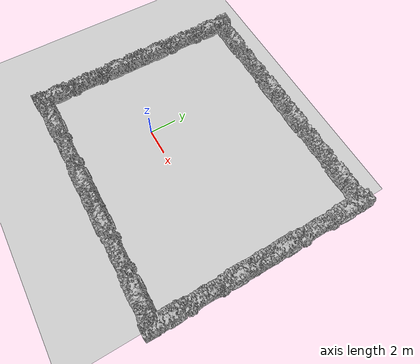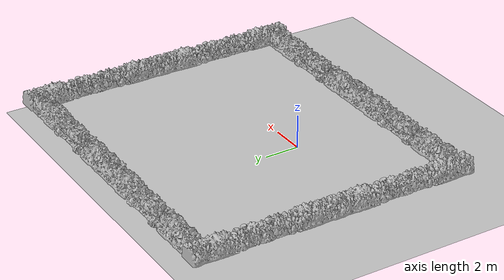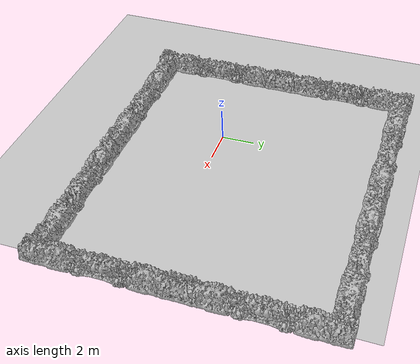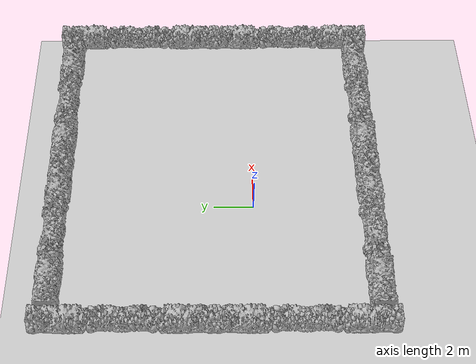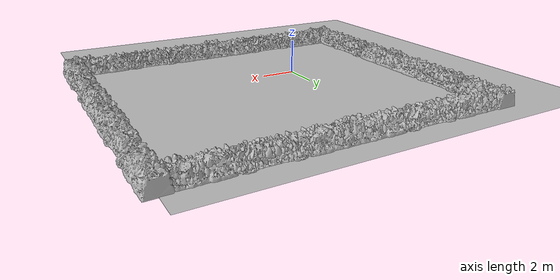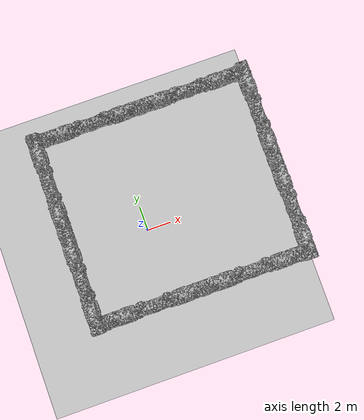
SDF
<sdf version="1.5">
 <world name="default">
  <include><uri>model://sun</uri></include>
  <include><uri>model://farming_ground</uri></include>
  <model name="wall_1N">
   <pose>12 0 0.2 0 0 0</pose>
   <include><static>true</static><uri>model://Stone_Wall02</uri></include>
  </model>
  <model name="wall_2E">
   <pose>4.8 -6 0.2 0 0 1.5708</pose>
   <include><static>true</static><uri>model://Stone_Wall02</uri></include>
  </model>
  <model name="wall_3S">
   <pose>-6.5 0 0.2 0 0 0</pose>
   <include><static>true</static><uri>model://Stone_Wall02</uri></include>
  </model>
  <model name="wall_4W">
   <pose>4.8 10 0.2 0 0 1.5708</pose>
   <include><static>true</static><uri>model://Stone_Wall02</uri></include>
  </model>
 </world>
</sdf>

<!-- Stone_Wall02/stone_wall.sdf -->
<sdf version="1.6">
  <model name="stone_wall02">
    <static>true</static>
    <link name="link">
      <collision name="collision">
        <pose>0 0 0 1.57079632679489661923 0 1.57079632679489661923</pose>
        <geometry>
          <mesh>
            <uri>model://Stone_Wall/source/Dunga.obj</uri>
            <scale>0.2 0.4 0.3</scale>
          </mesh>
        </geometry>
      </collision>
      <visual name="visual">
        <pose>0 0 0 1.57 0 1.57079632679489661923</pose>
        <geometry>
          <mesh>
            <uri>model://Stone_Wall/source/Dunga.obj</uri>
            <scale>0.2 0.4 0.3</scale>
          </mesh>
        </geometry>
        <material>
          <script>
            <uri>model://Dunga.mtl</uri>
          </script>
        </material>
      </visual>
    </link>
  </model>
</sdf>

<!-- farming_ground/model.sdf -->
<sdf version="1.6">
<model name="farming_ground">
  <static>true</static>
    <link name="link">
      <collision name="collision">
        <geometry>
          <plane>
            <normal>0 0 1</normal>
            <size>24 24</size>
          </plane>
        </geometry>
        <surface>
          <friction>
            <ode>
              <mu>100</mu>
              <mu2>50</mu2>
            </ode>
          </friction>
        </surface>
      </collision>
      <visual name="visual">
        <cast_shadows>false</cast_shadows>
        <geometry>
          <plane>
            <normal>0 0 1</normal>
            <size>24 24</size>
          </plane>
        </geometry>
        <material>
          <script>
            <uri>model://farming_ground/materials/scripts/farmingground.material</uri>
            <uri>model://farming_ground/materials/textures</uri>
            <name>farming_ground/Image</name>
          </script>
        </material>
      </visual>
    </link>
  </model>
</sdf>
